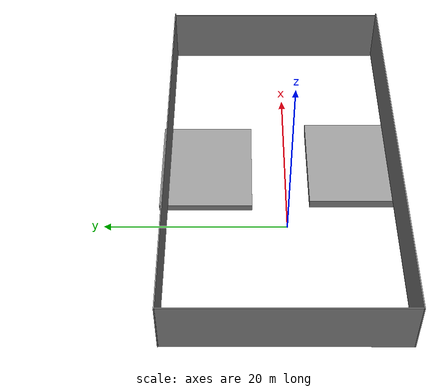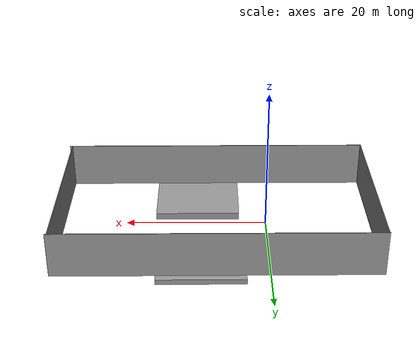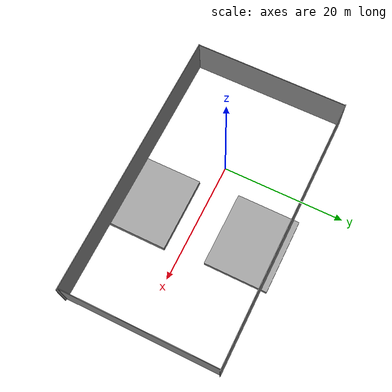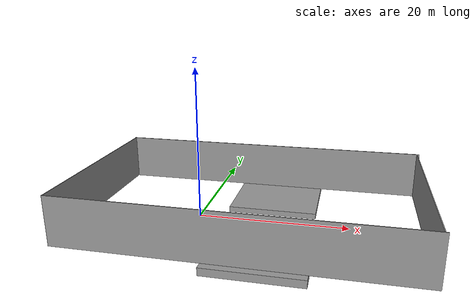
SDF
<sdf version="1.6">
 <world name="default">
  <light name="sun" type="directional">
   <pose>0 0 10 0 -0 0</pose>
   <diffuse>1 1 1 1</diffuse>
   <specular>0.2 0.2 0.2 1</specular>
   <attenuation>
    <range>1000</range>
    <constant>0.9</constant>
    <linear>0.01</linear>
    <quadratic>0.001</quadratic>
   </attenuation>
   <direction>-0.5 0.5 -1</direction>
  </light>
  <scene><ambient>1 1 1 1</ambient><background>0 0 0 0</background><shadows>0</shadows></scene>
  <gravity>0 0 -9.8</gravity>
  <magnetic_field>6e-06 2.3e-05 -4.2e-05</magnetic_field>
  <atmosphere type="adiabatic"/>
  <audio><device>default</device></audio>
  <plugin name="ros_interface_plugin" filename="librotors_gazebo_ros_interface_plugin.so"/>
  <spherical_coordinates>
   <surface_model>EARTH_WGS84</surface_model>
   <latitude_deg>47.3667</latitude_deg>
   <longitude_deg>8.55</longitude_deg>
   <elevation>500</elevation>
   <heading_deg>0</heading_deg>
  </spherical_coordinates>
  <physics name="default_physics" default="0" type="ode">
   <ode>
    <solver>
     <type>quick</type>
     <iters>1000</iters>
     <sor>1.3</sor>
     <use_dynamic_moi_rescaling>0</use_dynamic_moi_rescaling>
    </solver>
    <constraints>
     <cfm>0</cfm>
     <erp>0.2</erp>
     <contact_max_correcting_vel>100</contact_max_correcting_vel>
     <contact_surface_layer>0.001</contact_surface_layer>
    </constraints>
   </ode>
   <max_step_size>0.01</max_step_size>
   <real_time_factor>1</real_time_factor>
   <real_time_update_rate>100</real_time_update_rate>
  </physics>
  <model name="unit_box">
   <pose>-15.0712 0.666252 3.23203 0 -0 0</pose>
   <link name="unit_box::link">
    <inertial>
     <mass>1</mass>
     <inertia>
      <ixx>0.166667</ixx>
      <ixy>0</ixy>
      <ixz>0</ixz>
      <iyy>0.166667</iyy>
      <iyz>0</iyz>
      <izz>0.166667</izz>
     </inertia>
    </inertial>
    <collision name="collision"><geometry><box><size>0.104729 25.1179 6.52915</size></box></geometry></collision>
    <visual name="visual">
     <geometry><box><size>0.104729 25.1179 6.52915</size></box></geometry>
     <material>
      <script><name>Gazebo/Grey</name><uri>file://media/materials/scripts/gazebo.material</uri></script>
     </material>
    </visual>
   </link>
  </model>
  <model name="unit_box_clone_clone">
   <pose>7.09552 13.266 3.23203 0 0 -1.5708</pose>
   <link name="unit_box_clone_clone::unit_box_clone::unit_box::link">
    <inertial>
     <mass>1</mass>
     <inertia>
      <ixx>0.166667</ixx>
      <ixy>0</ixy>
      <ixz>0</ixz>
      <iyy>0.166667</iyy>
      <iyz>0</iyz>
      <izz>0.166667</izz>
     </inertia>
    </inertial>
    <collision name="collision"><geometry><box><size>0.104729 44.5607 6.52915</size></box></geometry></collision>
    <visual name="visual">
     <geometry><box><size>0.104729 44.5607 6.52915</size></box></geometry>
     <material>
      <script><name>Gazebo/Grey</name><uri>file://media/materials/scripts/gazebo.material</uri></script>
     </material>
    </visual>
   </link>
  </model>
  <model name="unit_box_clone_0">
   <pose>29.0528 0.724665 3.23203 0 -0 0</pose>
   <link name="unit_box::link">
    <inertial>
     <mass>1</mass>
     <inertia>
      <ixx>0.166667</ixx>
      <ixy>0</ixy>
      <ixz>0</ixz>
      <iyy>0.166667</iyy>
      <iyz>0</iyz>
      <izz>0.166667</izz>
     </inertia>
    </inertial>
    <collision name="collision"><geometry><box><size>0.104729 25.1179 6.52915</size></box></geometry></collision>
    <visual name="visual">
     <geometry><box><size>0.104729 25.1179 6.52915</size></box></geometry>
     <material>
      <script><name>Gazebo/Grey</name><uri>file://media/materials/scripts/gazebo.material</uri></script>
     </material>
    </visual>
   </link>
  </model>
  <model name="unit_box_clone_clone_clone">
   <pose>7.12716 -11.9521 3.23203 0 0 -1.5708</pose>
   <link name="unit_box_clone_clone::unit_box_clone::unit_box::link">
    <inertial>
     <mass>1</mass>
     <inertia>
      <ixx>0.166667</ixx>
      <ixy>0</ixy>
      <ixz>0</ixz>
      <iyy>0.166667</iyy>
      <iyz>0</iyz>
      <izz>0.166667</izz>
     </inertia>
    </inertial>
    <collision name="collision"><geometry><box><size>0.104729 44.5606 6.52915</size></box></geometry></collision>
    <visual name="visual">
     <geometry><box><size>0.104729 44.5606 6.52915</size></box></geometry>
     <material>
      <script><name>Gazebo/Grey</name><uri>file://media/materials/scripts/gazebo.material</uri></script>
     </material>
    </visual>
   </link>
  </model>
  <model name="unit_box_0">
   <pose>9.8656 -7.80532 -0.517725 0 -0 0</pose>
   <link name="unit_box_0::link">
    <inertial>
     <mass>1</mass>
     <inertia>
      <ixx>0.166667</ixx>
      <ixy>0</ixy>
      <ixz>0</ixz>
      <iyy>0.166667</iyy>
      <iyz>0</iyz>
      <izz>0.166667</izz>
     </inertia>
    </inertial>
    <collision name="collision"><geometry><box><size>12.1905 10.3505 1</size></box></geometry></collision>
    <visual name="visual">
     <geometry><box><size>12.1905 10.3505 1</size></box></geometry>
     <material>
      <script><name>Gazebo/Grey</name><uri>file://media/materials/scripts/gazebo.material</uri></script>
     </material>
    </visual>
   </link>
  </model>
  <model name="unit_box_0_clone">
   <pose>9.25762 9.0093 -0.462053 0 -0 0</pose>
   <link name="unit_box_0::link">
    <inertial>
     <mass>1</mass>
     <inertia>
      <ixx>0.166667</ixx>
      <ixy>0</ixy>
      <ixz>0</ixz>
      <iyy>0.166667</iyy>
      <iyz>0</iyz>
      <izz>0.166667</izz>
     </inertia>
    </inertial>
    <collision name="collision"><geometry><box><size>12.1905 10.3505 0.751502</size></box></geometry></collision>
    <visual name="visual">
     <geometry><box><size>12.1905 10.3505 0.751502</size></box></geometry>
     <material>
      <script><name>Gazebo/Grey</name><uri>file://media/materials/scripts/gazebo.material</uri></script>
     </material>
    </visual>
   </link>
  </model>
 </world>
</sdf>
